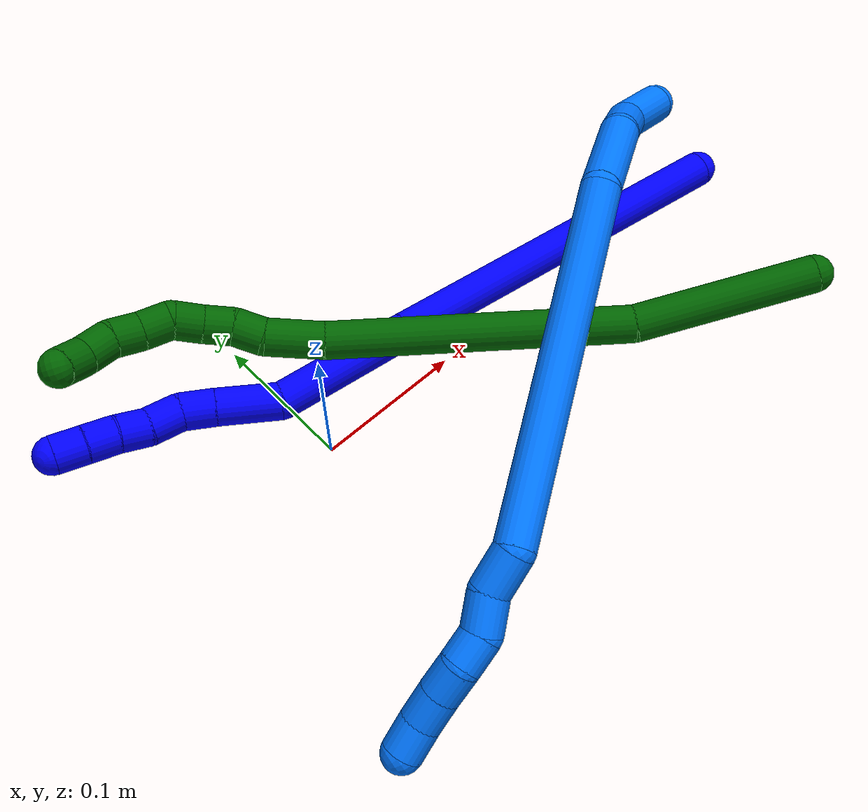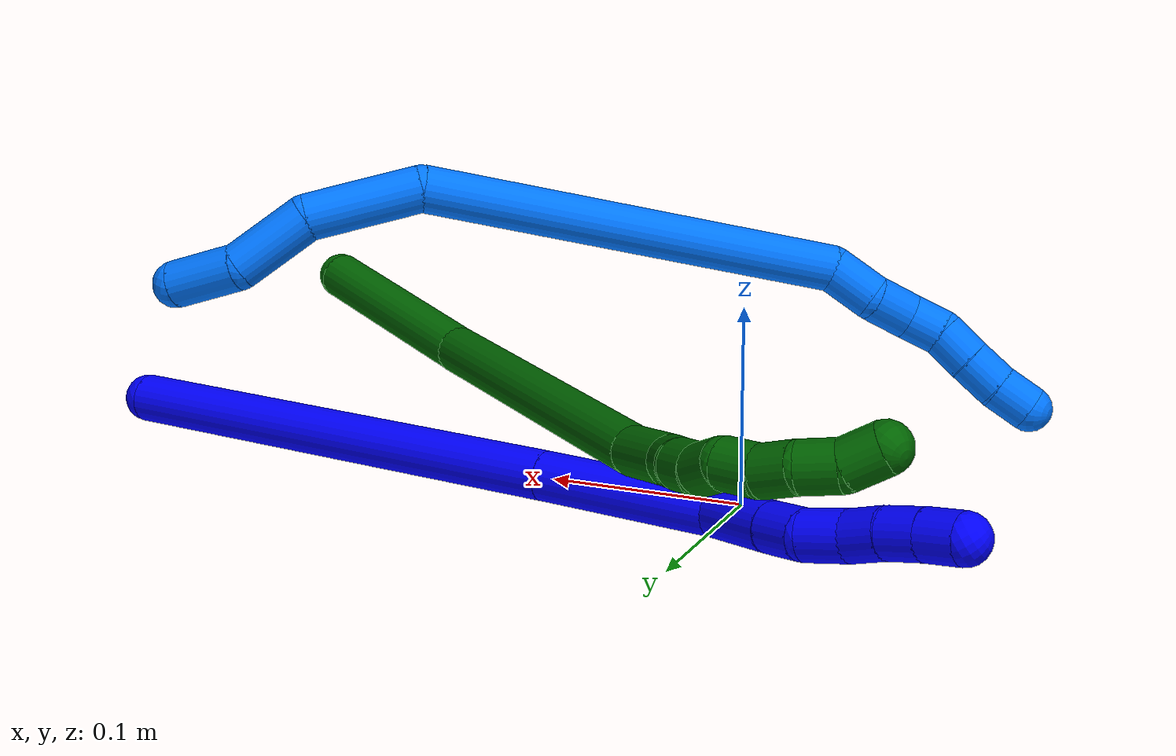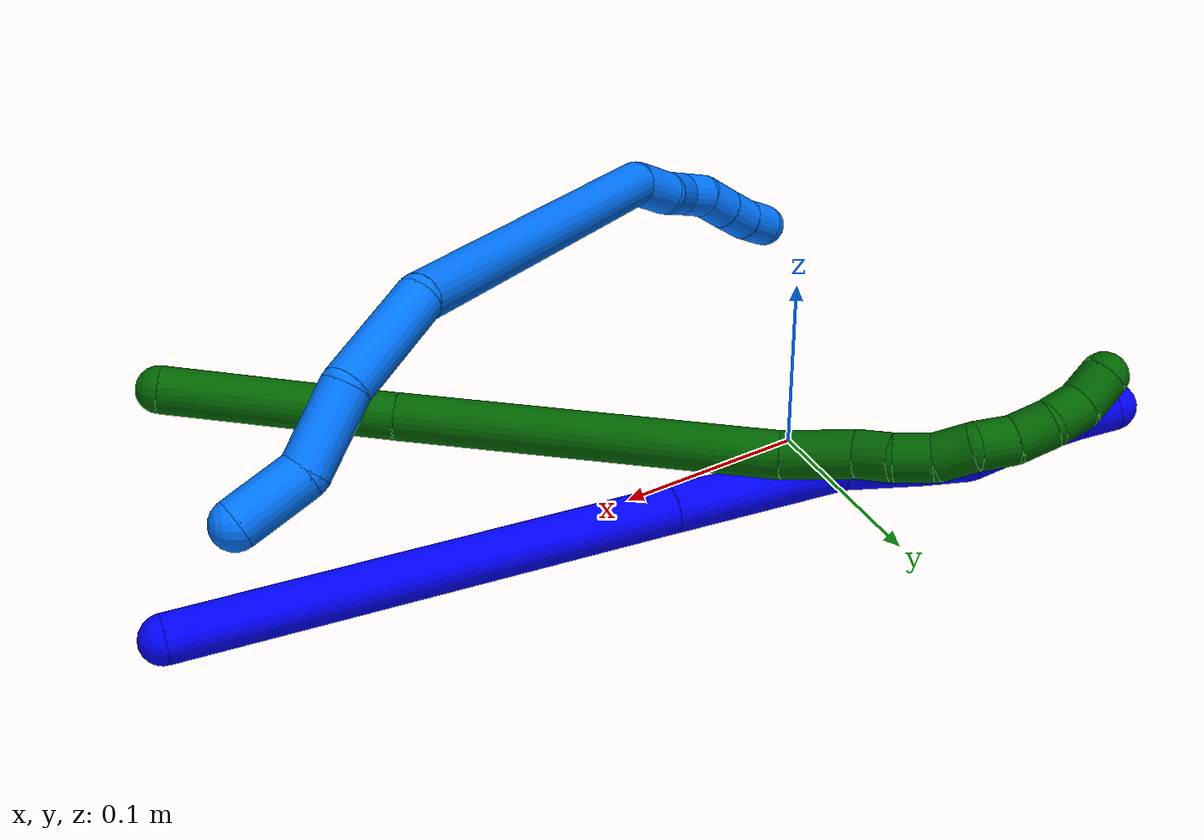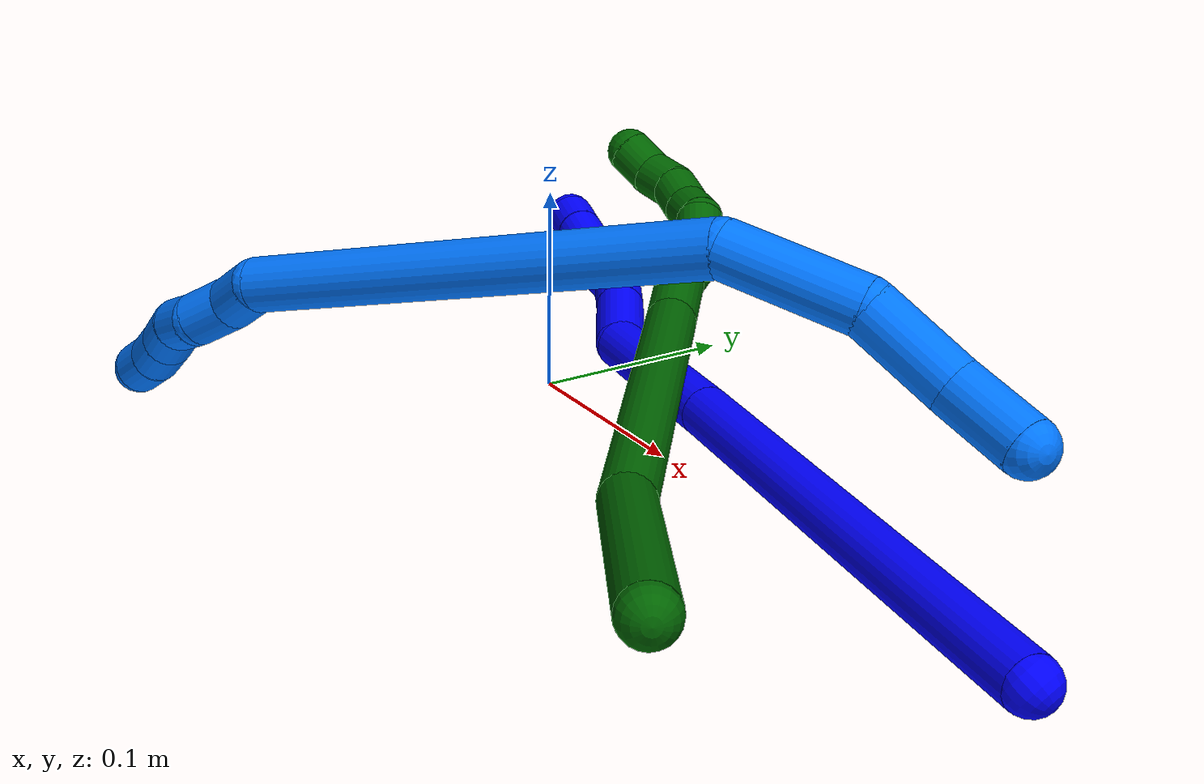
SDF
<sdf version="1.7">
 <world name="default">
  <model name="photoneo_s_sensor">
   <static>1</static>
   <pose>0 0 2 1.57079 1.57079 3.14159</pose>
   <link name="link">
    <inertial><mass>0.1</mass></inertial>
    <sensor name="sensor" type="depth">
     <update_rate>30</update_rate>
     <camera>
      <horizontal_fov>1.22</horizontal_fov>
      <image><width>1920</width><height>1200</height><format>B8G8R8</format></image>
      <clip><near>0.1</near><far>4</far></clip>
      <depth_camera><output>points</output></depth_camera>
     </camera>
     <plugin name="camera_plugin" filename="libgazebo_ros_depth_camera.so">
      <baseline>0.2</baseline>
      <alwaysOn>1</alwaysOn>
      <updateRate>0.0</updateRate>
      <cameraName>camera_ir</cameraName>
      <imageTopicName>/camera/color/image_raw</imageTopicName>
      <cameraInfoTopicName>/camera/color/camera_info</cameraInfoTopicName>
      <depthImageTopicName>/camera/depth/image_raw</depthImageTopicName>
      <depthImageCameraInfoTopicName>/camera/depth/camera_info</depthImageCameraInfoTopicName>
      <pointCloudTopicName>/camera/depth/points</pointCloudTopicName>
      <frameName>fr_optical</frameName>
      <pointCloudCutoff>0.1</pointCloudCutoff>
      <pointCloudCutoffMax>2.0</pointCloudCutoffMax>
      <distortionK1>0</distortionK1>
      <distortionK2>0</distortionK2>
      <distortionK3>0</distortionK3>
      <distortionT1>0</distortionT1>
      <distortionT2>0</distortionT2>
      <CxPrime>0</CxPrime>
      <Cx>0</Cx>
      <Cy>0</Cy>
      <focalLength>0</focalLength>
      <hackBaseline>0</hackBaseline>
     </plugin>
    </sensor>
   </link>
  </model>
  <model name="bin">
   <static>1</static>
   <link name="bottom">
    <collision name="collision-bottom">
     <pose>0 0 -0.01 0 -0 0</pose>
     <geometry><box><size>0.8 0.6 0.02</size></box></geometry>
     <surface>
      <friction><ode><mu>100</mu><mu2>100</mu2></ode></friction>
      <contact><collide_bitmask>65535</collide_bitmask></contact>
     </surface>
    </collision>
   </link>
   <link name="west_wall">
    <collision name="collision-west_wall">
     <pose>-0.41 0 0.1 0 -0 0</pose>
     <geometry><box><size>0.02 0.6 0.2</size></box></geometry>
     <surface>
      <friction><ode><mu>100</mu><mu2>100</mu2></ode></friction>
      <contact><collide_bitmask>65535</collide_bitmask></contact>
     </surface>
    </collision>
   </link>
   <link name="east_wall">
    <collision name="collision-east_wall">
     <pose>0.41 0 0.1 0 -0 0</pose>
     <geometry><box><size>0.02 0.6 0.2</size></box></geometry>
     <surface>
      <friction><ode><mu>100</mu><mu2>100</mu2></ode></friction>
      <contact><collide_bitmask>65535</collide_bitmask></contact>
     </surface>
    </collision>
   </link>
   <link name="south_wall">
    <collision name="collision-south_wall">
     <pose>0 -0.31 0.1 0 -0 0</pose>
     <geometry><box><size>0.8 0.02 0.2</size></box></geometry>
     <surface>
      <friction><ode><mu>100</mu><mu2>100</mu2></ode></friction>
      <contact><collide_bitmask>65535</collide_bitmask></contact>
     </surface>
    </collision>
   </link>
   <link name="north_wall">
    <collision name="collision-north_wall">
     <pose>0 0.31 0.1 0 -0 0</pose>
     <geometry><box><size>0.8 0.02 0.2</size></box></geometry>
     <surface>
      <friction><ode><mu>100</mu><mu2>100</mu2></ode></friction>
      <contact><collide_bitmask>65535</collide_bitmask></contact>
     </surface>
    </collision>
   </link>
  </model>
  <model name="1">
   <static>0</static>
   <link name="1">
    <collision name="collision-cylinder-e_1_1_4">
     <pose>-0.080535 0.021728 -0.097274 -2.92183 -0.679606 2.53659</pose>
     <geometry><cylinder><radius>0.0125</radius><length>0.256282</length></cylinder></geometry>
     <surface>
      <friction><ode><mu>1.16</mu><mu2>1.16</mu2><slip1>0</slip1><slip2>0</slip2></ode></friction>
      <contact><ode><kp>1e+06</kp><kd>1</kd><max_vel>0</max_vel><min_depth>0.001</min_depth></ode></contact>
     </surface>
    </collision>
    <visual name="visual-cylinder-e_1_1_4">
     <pose>-0.080535 0.021728 -0.097274 -2.92183 -0.679606 2.53659</pose>
     <geometry><cylinder><radius>0.0125</radius><length>0.256282</length></cylinder></geometry>
     <material><ambient>0 0 1 1</ambient></material>
    </visual>
    <collision name="collision-cylinder-e_2_4_5">
     <pose>-0.191255 0.052341 -0.230812 -2.90134 -0.67987 2.48377</pose>
     <geometry><cylinder><radius>0.0125</radius><length>0.096026</length></cylinder></geometry>
     <surface>
      <friction><ode><mu>1.16</mu><mu2>1.16</mu2><slip1>0</slip1><slip2>0</slip2></ode></friction>
      <contact><ode><kp>1e+06</kp><kd>1</kd><max_vel>0</max_vel><min_depth>0.001</min_depth></ode></contact>
     </surface>
    </collision>
    <visual name="visual-cylinder-e_2_4_5">
     <pose>-0.191255 0.052341 -0.230812 -2.90134 -0.67987 2.48377</pose>
     <geometry><cylinder><radius>0.0125</radius><length>0.096026</length></cylinder></geometry>
     <material><ambient>0 0 1 1</ambient></material>
    </visual>
    <collision name="collision-cylinder-e_3_5_6">
     <pose>-0.23789 0.057111 -0.279653 2.82545 -0.893374 -2.49907</pose>
     <geometry><cylinder><radius>0.0125</radius><length>0.042222</length></cylinder></geometry>
     <surface>
      <friction><ode><mu>1.16</mu><mu2>1.16</mu2><slip1>0</slip1><slip2>0</slip2></ode></friction>
      <contact><ode><kp>1e+06</kp><kd>1</kd><max_vel>0</max_vel><min_depth>0.001</min_depth></ode></contact>
     </surface>
    </collision>
    <visual name="visual-cylinder-e_3_5_6">
     <pose>-0.23789 0.057111 -0.279653 2.82545 -0.893374 -2.49907</pose>
     <geometry><cylinder><radius>0.0125</radius><length>0.042222</length></cylinder></geometry>
     <material><ambient>0 0 1 1</ambient></material>
    </visual>
    <collision name="collision-cylinder-e_4_6_7">
     <pose>-0.262875 0.051172 -0.299337 2.8902 -0.860722 -2.60437</pose>
     <geometry><cylinder><radius>0.0125</radius><length>0.022514</length></cylinder></geometry>
     <surface>
      <friction><ode><mu>1.16</mu><mu2>1.16</mu2><slip1>0</slip1><slip2>0</slip2></ode></friction>
      <contact><ode><kp>1e+06</kp><kd>1</kd><max_vel>0</max_vel><min_depth>0.001</min_depth></ode></contact>
     </surface>
    </collision>
    <visual name="visual-cylinder-e_4_6_7">
     <pose>-0.262875 0.051172 -0.299337 2.8902 -0.860722 -2.60437</pose>
     <geometry><cylinder><radius>0.0125</radius><length>0.022514</length></cylinder></geometry>
     <material><ambient>0 0 1 1</ambient></material>
    </visual>
    <collision name="collision-cylinder-e_5_7_8">
     <pose>-0.2775 0.050247 -0.316099 -3.0486 -0.560676 2.82115</pose>
     <geometry><cylinder><radius>0.0125</radius><length>0.022897</length></cylinder></geometry>
     <surface>
      <friction><ode><mu>1.16</mu><mu2>1.16</mu2><slip1>0</slip1><slip2>0</slip2></ode></friction>
      <contact><ode><kp>1e+06</kp><kd>1</kd><max_vel>0</max_vel><min_depth>0.001</min_depth></ode></contact>
     </surface>
    </collision>
    <visual name="visual-cylinder-e_5_7_8">
     <pose>-0.2775 0.050247 -0.316099 -3.0486 -0.560676 2.82115</pose>
     <geometry><cylinder><radius>0.0125</radius><length>0.022897</length></cylinder></geometry>
     <material><ambient>0 0 1 1</ambient></material>
    </visual>
    <collision name="collision-cylinder-e_6_8_9">
     <pose>-0.289081 0.049796 -0.334015 2.97955 -0.580663 -2.61086</pose>
     <geometry><cylinder><radius>0.0125</radius><length>0.020028</length></cylinder></geometry>
     <surface>
      <friction><ode><mu>1.16</mu><mu2>1.16</mu2><slip1>0</slip1><slip2>0</slip2></ode></friction>
      <contact><ode><kp>1e+06</kp><kd>1</kd><max_vel>0</max_vel><min_depth>0.001</min_depth></ode></contact>
     </surface>
    </collision>
    <visual name="visual-cylinder-e_6_8_9">
     <pose>-0.289081 0.049796 -0.334015 2.97955 -0.580663 -2.61086</pose>
     <geometry><cylinder><radius>0.0125</radius><length>0.020028</length></cylinder></geometry>
     <material><ambient>0 0 1 1</ambient></material>
    </visual>
    <collision name="collision-cylinder-e_7_9_10">
     <pose>-0.300559 0.048176 -0.350303 3.108 -0.640523 -3.04038</pose>
     <geometry><cylinder><radius>0.0125</radius><length>0.02003</length></cylinder></geometry>
     <surface>
      <friction><ode><mu>1.16</mu><mu2>1.16</mu2><slip1>0</slip1><slip2>0</slip2></ode></friction>
      <contact><ode><kp>1e+06</kp><kd>1</kd><max_vel>0</max_vel><min_depth>0.001</min_depth></ode></contact>
     </surface>
    </collision>
    <visual name="visual-cylinder-e_7_9_10">
     <pose>-0.300559 0.048176 -0.350303 3.108 -0.640523 -3.04038</pose>
     <geometry><cylinder><radius>0.0125</radius><length>0.02003</length></cylinder></geometry>
     <material><ambient>0 0 1 1</ambient></material>
    </visual>
    <collision name="collision-cylinder-e_8_10_2">
     <pose>-0.312968 0.047802 -0.365993 3.12805 -0.69756 -3.10436</pose>
     <geometry><cylinder><radius>0.0125</radius><length>0.020002</length></cylinder></geometry>
     <surface>
      <friction><ode><mu>1.16</mu><mu2>1.16</mu2><slip1>0</slip1><slip2>0</slip2></ode></friction>
      <contact><ode><kp>1e+06</kp><kd>1</kd><max_vel>0</max_vel><min_depth>0.001</min_depth></ode></contact>
     </surface>
    </collision>
    <visual name="visual-cylinder-e_8_10_2">
     <pose>-0.312968 0.047802 -0.365993 3.12805 -0.69756 -3.10436</pose>
     <geometry><cylinder><radius>0.0125</radius><length>0.020002</length></cylinder></geometry>
     <material><ambient>0 0 1 1</ambient></material>
    </visual>
    <collision name="collision-sphere-2">
     <pose>-0.319393 0.047699 -0.373657 0 -0 0</pose>
     <geometry><sphere><radius>0.0125</radius></sphere></geometry>
     <surface>
      <friction><ode><mu>1.16</mu><mu2>1.16</mu2><slip1>0</slip1><slip2>0</slip2></ode></friction>
      <contact><ode><kp>1e+06</kp><kd>1</kd><max_vel>0</max_vel><min_depth>0.001</min_depth></ode></contact>
     </surface>
    </collision>
    <visual name="visual-sphere-2">
     <pose>-0.319393 0.047699 -0.373657 0 -0 0</pose>
     <geometry><sphere><radius>0.0125</radius></sphere></geometry>
     <material><ambient>0 0 1 1</ambient></material>
    </visual>
    <collision name="collision-sphere-10">
     <pose>-0.306544 0.047906 -0.358329 0 -0 0</pose>
     <geometry><sphere><radius>0.0125</radius></sphere></geometry>
     <surface>
      <friction><ode><mu>1.16</mu><mu2>1.16</mu2><slip1>0</slip1><slip2>0</slip2></ode></friction>
      <contact><ode><kp>1e+06</kp><kd>1</kd><max_vel>0</max_vel><min_depth>0.001</min_depth></ode></contact>
     </surface>
    </collision>
    <visual name="visual-sphere-10">
     <pose>-0.306544 0.047906 -0.358329 0 -0 0</pose>
     <geometry><sphere><radius>0.0125</radius></sphere></geometry>
     <material><ambient>0 0 1 1</ambient></material>
    </visual>
    <collision name="collision-sphere-9">
     <pose>-0.294574 0.048446 -0.342278 0 -0 0</pose>
     <geometry><sphere><radius>0.0125</radius></sphere></geometry>
     <surface>
      <friction><ode><mu>1.16</mu><mu2>1.16</mu2><slip1>0</slip1><slip2>0</slip2></ode></friction>
      <contact><ode><kp>1e+06</kp><kd>1</kd><max_vel>0</max_vel><min_depth>0.001</min_depth></ode></contact>
     </surface>
    </collision>
    <visual name="visual-sphere-9">
     <pose>-0.294574 0.048446 -0.342278 0 -0 0</pose>
     <geometry><sphere><radius>0.0125</radius></sphere></geometry>
     <material><ambient>0 0 1 1</ambient></material>
    </visual>
    <collision name="collision-sphere-4">
     <pose>-0.16107 0.043456 -0.194547 0 -0 0</pose>
     <geometry><sphere><radius>0.0125</radius></sphere></geometry>
     <surface>
      <friction><ode><mu>1.16</mu><mu2>1.16</mu2><slip1>0</slip1><slip2>0</slip2></ode></friction>
      <contact><ode><kp>1e+06</kp><kd>1</kd><max_vel>0</max_vel><min_depth>0.001</min_depth></ode></contact>
     </surface>
    </collision>
    <visual name="visual-sphere-4">
     <pose>-0.16107 0.043456 -0.194547 0 -0 0</pose>
     <geometry><sphere><radius>0.0125</radius></sphere></geometry>
     <material><ambient>0 0 1 1</ambient></material>
    </visual>
    <collision name="collision-sphere-1">
     <geometry><sphere><radius>0.0125</radius></sphere></geometry>
     <surface>
      <friction><ode><mu>1.16</mu><mu2>1.16</mu2><slip1>0</slip1><slip2>0</slip2></ode></friction>
      <contact><ode><kp>1e+06</kp><kd>1</kd><max_vel>0</max_vel><min_depth>0.001</min_depth></ode></contact>
     </surface>
    </collision>
    <visual name="visual-sphere-1">
     <geometry><sphere><radius>0.0125</radius></sphere></geometry>
     <material><ambient>0 0 1 1</ambient></material>
    </visual>
    <collision name="collision-sphere-8">
     <pose>-0.283587 0.051147 -0.325752 0 -0 0</pose>
     <geometry><sphere><radius>0.0125</radius></sphere></geometry>
     <surface>
      <friction><ode><mu>1.16</mu><mu2>1.16</mu2><slip1>0</slip1><slip2>0</slip2></ode></friction>
      <contact><ode><kp>1e+06</kp><kd>1</kd><max_vel>0</max_vel><min_depth>0.001</min_depth></ode></contact>
     </surface>
    </collision>
    <visual name="visual-sphere-8">
     <pose>-0.283587 0.051147 -0.325752 0 -0 0</pose>
     <geometry><sphere><radius>0.0125</radius></sphere></geometry>
     <material><ambient>0 0 1 1</ambient></material>
    </visual>
    <collision name="collision-sphere-5">
     <pose>-0.22144 0.061225 -0.267077 0 -0 0</pose>
     <geometry><sphere><radius>0.0125</radius></sphere></geometry>
     <surface>
      <friction><ode><mu>1.16</mu><mu2>1.16</mu2><slip1>0</slip1><slip2>0</slip2></ode></friction>
      <contact><ode><kp>1e+06</kp><kd>1</kd><max_vel>0</max_vel><min_depth>0.001</min_depth></ode></contact>
     </surface>
    </collision>
    <visual name="visual-sphere-5">
     <pose>-0.22144 0.061225 -0.267077 0 -0 0</pose>
     <geometry><sphere><radius>0.0125</radius></sphere></geometry>
     <material><ambient>0 0 1 1</ambient></material>
    </visual>
    <collision name="collision-sphere-6">
     <pose>-0.254339 0.052997 -0.29223 0 -0 0</pose>
     <geometry><sphere><radius>0.0125</radius></sphere></geometry>
     <surface>
      <friction><ode><mu>1.16</mu><mu2>1.16</mu2><slip1>0</slip1><slip2>0</slip2></ode></friction>
      <contact><ode><kp>1e+06</kp><kd>1</kd><max_vel>0</max_vel><min_depth>0.001</min_depth></ode></contact>
     </surface>
    </collision>
    <visual name="visual-sphere-6">
     <pose>-0.254339 0.052997 -0.29223 0 -0 0</pose>
     <geometry><sphere><radius>0.0125</radius></sphere></geometry>
     <material><ambient>0 0 1 1</ambient></material>
    </visual>
    <collision name="collision-sphere-7">
     <pose>-0.271412 0.049347 -0.306445 0 -0 0</pose>
     <geometry><sphere><radius>0.0125</radius></sphere></geometry>
     <surface>
      <friction><ode><mu>1.16</mu><mu2>1.16</mu2><slip1>0</slip1><slip2>0</slip2></ode></friction>
      <contact><ode><kp>1e+06</kp><kd>1</kd><max_vel>0</max_vel><min_depth>0.001</min_depth></ode></contact>
     </surface>
    </collision>
    <visual name="visual-sphere-7">
     <pose>-0.271412 0.049347 -0.306445 0 -0 0</pose>
     <geometry><sphere><radius>0.0125</radius></sphere></geometry>
     <material><ambient>0 0 1 1</ambient></material>
    </visual>
    <inertial>
     <pose>-0.158782 0.036454 -0.187809 0 -0 0</pose>
     <mass>0.5</mass>
     <inertia>
      <ixx>-0.000328</ixx>
      <ixy>0</ixy>
      <ixz>0</ixz>
      <iyy>0.001987</iyy>
      <iyz>0</iyz>
      <izz>0.000667</izz>
     </inertia>
    </inertial>
   </link>
   <pose>0.344636 -0.009348 0.011492 -2.21176 -0.463312 -0.944536</pose>
  </model>
  <model name="6">
   <static>0</static>
   <link name="6">
    <collision name="collision-cylinder-e_1_1_4">
     <pose>-0.001709 0.001632 -0.060561 -3.11466 -0.028195 1.61649</pose>
     <geometry><cylinder><radius>0.0125</radius><length>0.121214</length></cylinder></geometry>
     <surface>
      <friction><ode><mu>1.16</mu><mu2>1.16</mu2><slip1>0</slip1><slip2>0</slip2></ode></friction>
      <contact><ode><kp>1e+06</kp><kd>1</kd><max_vel>0</max_vel><min_depth>0.001</min_depth></ode></contact>
     </surface>
    </collision>
    <visual name="visual-cylinder-e_1_1_4">
     <pose>-0.001709 0.001632 -0.060561 -3.11466 -0.028195 1.61649</pose>
     <geometry><cylinder><radius>0.0125</radius><length>0.121214</length></cylinder></geometry>
     <material><ambient>0 0.392157 0.003922 1</ambient></material>
    </visual>
    <collision name="collision-cylinder-e_2_4_5">
     <pose>-0.024999 0.016697 -0.217921 -3.0037 -0.217355 2.01303</pose>
     <geometry><cylinder><radius>0.0125</radius><length>0.200162</length></cylinder></geometry>
     <surface>
      <friction><ode><mu>1.16</mu><mu2>1.16</mu2><slip1>0</slip1><slip2>0</slip2></ode></friction>
      <contact><ode><kp>1e+06</kp><kd>1</kd><max_vel>0</max_vel><min_depth>0.001</min_depth></ode></contact>
     </surface>
    </collision>
    <visual name="visual-cylinder-e_2_4_5">
     <pose>-0.024999 0.016697 -0.217921 -3.0037 -0.217355 2.01303</pose>
     <geometry><cylinder><radius>0.0125</radius><length>0.200162</length></cylinder></geometry>
     <material><ambient>0 0.392157 0.003922 1</ambient></material>
    </visual>
    <collision name="collision-cylinder-e_3_5_6">
     <pose>-0.053785 0.032091 -0.332514 -3.03183 -0.382565 2.58873</pose>
     <geometry><cylinder><radius>0.0125</radius><length>0.038594</length></cylinder></geometry>
     <surface>
      <friction><ode><mu>1.16</mu><mu2>1.16</mu2><slip1>0</slip1><slip2>0</slip2></ode></friction>
      <contact><ode><kp>1e+06</kp><kd>1</kd><max_vel>0</max_vel><min_depth>0.001</min_depth></ode></contact>
     </surface>
    </collision>
    <visual name="visual-cylinder-e_3_5_6">
     <pose>-0.053785 0.032091 -0.332514 -3.03183 -0.382565 2.58873</pose>
     <geometry><cylinder><radius>0.0125</radius><length>0.038594</length></cylinder></geometry>
     <material><ambient>0 0.392157 0.003922 1</ambient></material>
    </visual>
    <collision name="collision-cylinder-e_4_6_7">
     <pose>-0.066 0.037294 -0.35834 -2.75795 -0.524488 1.88893</pose>
     <geometry><cylinder><radius>0.0125</radius><length>0.020014</length></cylinder></geometry>
     <surface>
      <friction><ode><mu>1.16</mu><mu2>1.16</mu2><slip1>0</slip1><slip2>0</slip2></ode></friction>
      <contact><ode><kp>1e+06</kp><kd>1</kd><max_vel>0</max_vel><min_depth>0.001</min_depth></ode></contact>
     </surface>
    </collision>
    <visual name="visual-cylinder-e_4_6_7">
     <pose>-0.066 0.037294 -0.35834 -2.75795 -0.524488 1.88893</pose>
     <geometry><cylinder><radius>0.0125</radius><length>0.020014</length></cylinder></geometry>
     <material><ambient>0 0.392157 0.003922 1</ambient></material>
    </visual>
    <collision name="collision-cylinder-e_5_7_8">
     <pose>-0.074821 0.041761 -0.375538 -3.00873 -0.390864 2.49315</pose>
     <geometry><cylinder><radius>0.0125</radius><length>0.020003</length></cylinder></geometry>
     <surface>
      <friction><ode><mu>1.16</mu><mu2>1.16</mu2><slip1>0</slip1><slip2>0</slip2></ode></friction>
      <contact><ode><kp>1e+06</kp><kd>1</kd><max_vel>0</max_vel><min_depth>0.001</min_depth></ode></contact>
     </surface>
    </collision>
    <visual name="visual-cylinder-e_5_7_8">
     <pose>-0.074821 0.041761 -0.375538 -3.00873 -0.390864 2.49315</pose>
     <geometry><cylinder><radius>0.0125</radius><length>0.020003</length></cylinder></geometry>
     <material><ambient>0 0.392157 0.003922 1</ambient></material>
    </visual>
    <collision name="collision-cylinder-e_6_8_9">
     <pose>-0.084213 0.042226 -0.392967 3.04985 -0.592044 -2.8428</pose>
     <geometry><cylinder><radius>0.0125</radius><length>0.020002</length></cylinder></geometry>
     <surface>
      <friction><ode><mu>1.16</mu><mu2>1.16</mu2><slip1>0</slip1><slip2>0</slip2></ode></friction>
      <contact><ode><kp>1e+06</kp><kd>1</kd><max_vel>0</max_vel><min_depth>0.001</min_depth></ode></contact>
     </surface>
    </collision>
    <visual name="visual-cylinder-e_6_8_9">
     <pose>-0.084213 0.042226 -0.392967 3.04985 -0.592044 -2.8428</pose>
     <geometry><cylinder><radius>0.0125</radius><length>0.020002</length></cylinder></geometry>
     <material><ambient>0 0.392157 0.003922 1</ambient></material>
    </visual>
    <collision name="collision-cylinder-e_7_9_10">
     <pose>-0.090819 0.039001 -0.41087 2.89127 -0.102681 -0.775477</pose>
     <geometry><cylinder><radius>0.0125</radius><length>0.020004</length></cylinder></geometry>
     <surface>
      <friction><ode><mu>1.16</mu><mu2>1.16</mu2><slip1>0</slip1><slip2>0</slip2></ode></friction>
      <contact><ode><kp>1e+06</kp><kd>1</kd><max_vel>0</max_vel><min_depth>0.001</min_depth></ode></contact>
     </surface>
    </collision>
    <visual name="visual-cylinder-e_7_9_10">
     <pose>-0.090819 0.039001 -0.41087 2.89127 -0.102681 -0.775477</pose>
     <geometry><cylinder><radius>0.0125</radius><length>0.020004</length></cylinder></geometry>
     <material><ambient>0 0.392157 0.003922 1</ambient></material>
    </visual>
    <collision name="collision-cylinder-e_8_10_11">
     <pose>-0.095018 0.032676 -0.429176 2.72254 -0.322811 -1.30693</pose>
     <geometry><cylinder><radius>0.0125</radius><length>0.020007</length></cylinder></geometry>
     <surface>
      <friction><ode><mu>1.16</mu><mu2>1.16</mu2><slip1>0</slip1><slip2>0</slip2></ode></friction>
      <contact><ode><kp>1e+06</kp><kd>1</kd><max_vel>0</max_vel><min_depth>0.001</min_depth></ode></contact>
     </surface>
    </collision>
    <visual name="visual-cylinder-e_8_10_11">
     <pose>-0.095018 0.032676 -0.429176 2.72254 -0.322811 -1.30693</pose>
     <geometry><cylinder><radius>0.0125</radius><length>0.020007</length></cylinder></geometry>
     <material><ambient>0 0.392157 0.003922 1</ambient></material>
    </visual>
    <collision name="collision-cylinder-e_9_11_12">
     <pose>-0.099053 0.02294 -0.445887 2.51083 -0.086295 -0.263122</pose>
     <geometry><cylinder><radius>0.0125</radius><length>0.02</length></cylinder></geometry>
     <surface>
      <friction><ode><mu>1.16</mu><mu2>1.16</mu2><slip1>0</slip1><slip2>0</slip2></ode></friction>
      <contact><ode><kp>1e+06</kp><kd>1</kd><max_vel>0</max_vel><min_depth>0.001</min_depth></ode></contact>
     </surface>
    </collision>
    <visual name="visual-cylinder-e_9_11_12">
     <pose>-0.099053 0.02294 -0.445887 2.51083 -0.086295 -0.263122</pose>
     <geometry><cylinder><radius>0.0125</radius><length>0.02</length></cylinder></geometry>
     <material><ambient>0 0.392157 0.003922 1</ambient></material>
    </visual>
    <collision name="collision-cylinder-e_10_12_2">
     <pose>-0.103365 0.009824 -0.459906 2.26059 -0.352186 -0.721867</pose>
     <geometry><cylinder><radius>0.0125</radius><length>0.02</length></cylinder></geometry>
     <surface>
      <friction><ode><mu>1.16</mu><mu2>1.16</mu2><slip1>0</slip1><slip2>0</slip2></ode></friction>
      <contact><ode><kp>1e+06</kp><kd>1</kd><max_vel>0</max_vel><min_depth>0.001</min_depth></ode></contact>
     </surface>
    </collision>
    <visual name="visual-cylinder-e_10_12_2">
     <pose>-0.103365 0.009824 -0.459906 2.26059 -0.352186 -0.721867</pose>
     <geometry><cylinder><radius>0.0125</radius><length>0.02</length></cylinder></geometry>
     <material><ambient>0 0.392157 0.003922 1</ambient></material>
    </visual>
    <collision name="collision-sphere-2">
     <pose>-0.106814 0.002584 -0.465879 0 -0 0</pose>
     <geometry><sphere><radius>0.0125</radius></sphere></geometry>
     <surface>
      <friction><ode><mu>1.16</mu><mu2>1.16</mu2><slip1>0</slip1><slip2>0</slip2></ode></friction>
      <contact><ode><kp>1e+06</kp><kd>1</kd><max_vel>0</max_vel><min_depth>0.001</min_depth></ode></contact>
     </surface>
    </collision>
    <visual name="visual-sphere-2">
     <pose>-0.106814 0.002584 -0.465879 0 -0 0</pose>
     <geometry><sphere><radius>0.0125</radius></sphere></geometry>
     <material><ambient>0 0.392157 0.003922 1</ambient></material>
    </visual>
    <collision name="collision-sphere-12">
     <pose>-0.099915 0.017065 -0.453933 0 -0 0</pose>
     <geometry><sphere><radius>0.0125</radius></sphere></geometry>
     <surface>
      <friction><ode><mu>1.16</mu><mu2>1.16</mu2><slip1>0</slip1><slip2>0</slip2></ode></friction>
      <contact><ode><kp>1e+06</kp><kd>1</kd><max_vel>0</max_vel><min_depth>0.001</min_depth></ode></contact>
     </surface>
    </collision>
    <visual name="visual-sphere-12">
     <pose>-0.099915 0.017065 -0.453933 0 -0 0</pose>
     <geometry><sphere><radius>0.0125</radius></sphere></geometry>
     <material><ambient>0 0.392157 0.003922 1</ambient></material>
    </visual>
    <collision name="collision-sphere-11">
     <pose>-0.098191 0.028816 -0.437841 0 -0 0</pose>
     <geometry><sphere><radius>0.0125</radius></sphere></geometry>
     <surface>
      <friction><ode><mu>1.16</mu><mu2>1.16</mu2><slip1>0</slip1><slip2>0</slip2></ode></friction>
      <contact><ode><kp>1e+06</kp><kd>1</kd><max_vel>0</max_vel><min_depth>0.001</min_depth></ode></contact>
     </surface>
    </collision>
    <visual name="visual-sphere-11">
     <pose>-0.098191 0.028816 -0.437841 0 -0 0</pose>
     <geometry><sphere><radius>0.0125</radius></sphere></geometry>
     <material><ambient>0 0.392157 0.003922 1</ambient></material>
    </visual>
    <collision name="collision-sphere-10">
     <pose>-0.091844 0.036536 -0.42051 0 -0 0</pose>
     <geometry><sphere><radius>0.0125</radius></sphere></geometry>
     <surface>
      <friction><ode><mu>1.16</mu><mu2>1.16</mu2><slip1>0</slip1><slip2>0</slip2></ode></friction>
      <contact><ode><kp>1e+06</kp><kd>1</kd><max_vel>0</max_vel><min_depth>0.001</min_depth></ode></contact>
     </surface>
    </collision>
    <visual name="visual-sphere-10">
     <pose>-0.091844 0.036536 -0.42051 0 -0 0</pose>
     <geometry><sphere><radius>0.0125</radius></sphere></geometry>
     <material><ambient>0 0.392157 0.003922 1</ambient></material>
    </visual>
    <collision name="collision-sphere-9">
     <pose>-0.089794 0.041466 -0.401231 0 -0 0</pose>
     <geometry><sphere><radius>0.0125</radius></sphere></geometry>
     <surface>
      <friction><ode><mu>1.16</mu><mu2>1.16</mu2><slip1>0</slip1><slip2>0</slip2></ode></friction>
      <contact><ode><kp>1e+06</kp><kd>1</kd><max_vel>0</max_vel><min_depth>0.001</min_depth></ode></contact>
     </surface>
    </collision>
    <visual name="visual-sphere-9">
     <pose>-0.089794 0.041466 -0.401231 0 -0 0</pose>
     <geometry><sphere><radius>0.0125</radius></sphere></geometry>
     <material><ambient>0 0.392157 0.003922 1</ambient></material>
    </visual>
    <collision name="collision-sphere-4">
     <pose>-0.003417 0.003263 -0.121122 0 -0 0</pose>
     <geometry><sphere><radius>0.0125</radius></sphere></geometry>
     <surface>
      <friction><ode><mu>1.16</mu><mu2>1.16</mu2><slip1>0</slip1><slip2>0</slip2></ode></friction>
      <contact><ode><kp>1e+06</kp><kd>1</kd><max_vel>0</max_vel><min_depth>0.001</min_depth></ode></contact>
     </surface>
    </collision>
    <visual name="visual-sphere-4">
     <pose>-0.003417 0.003263 -0.121122 0 -0 0</pose>
     <geometry><sphere><radius>0.0125</radius></sphere></geometry>
     <material><ambient>0 0.392157 0.003922 1</ambient></material>
    </visual>
    <collision name="collision-sphere-1">
     <geometry><sphere><radius>0.0125</radius></sphere></geometry>
     <surface>
      <friction><ode><mu>1.16</mu><mu2>1.16</mu2><slip1>0</slip1><slip2>0</slip2></ode></friction>
      <contact><ode><kp>1e+06</kp><kd>1</kd><max_vel>0</max_vel><min_depth>0.001</min_depth></ode></contact>
     </surface>
    </collision>
    <visual name="visual-sphere-1">
     <geometry><sphere><radius>0.0125</radius></sphere></geometry>
     <material><ambient>0 0.392157 0.003922 1</ambient></material>
    </visual>
    <collision name="collision-sphere-8">
     <pose>-0.078632 0.042986 -0.384704 0 -0 0</pose>
     <geometry><sphere><radius>0.0125</radius></sphere></geometry>
     <surface>
      <friction><ode><mu>1.16</mu><mu2>1.16</mu2><slip1>0</slip1><slip2>0</slip2></ode></friction>
      <contact><ode><kp>1e+06</kp><kd>1</kd><max_vel>0</max_vel><min_depth>0.001</min_depth></ode></contact>
     </surface>
    </collision>
    <visual name="visual-sphere-8">
     <pose>-0.078632 0.042986 -0.384704 0 -0 0</pose>
     <geometry><sphere><radius>0.0125</radius></sphere></geometry>
     <material><ambient>0 0.392157 0.003922 1</ambient></material>
    </visual>
    <collision name="collision-sphere-5">
     <pose>-0.046582 0.03013 -0.31472 0 -0 0</pose>
     <geometry><sphere><radius>0.0125</radius></sphere></geometry>
     <surface>
      <friction><ode><mu>1.16</mu><mu2>1.16</mu2><slip1>0</slip1><slip2>0</slip2></ode></friction>
      <contact><ode><kp>1e+06</kp><kd>1</kd><max_vel>0</max_vel><min_depth>0.001</min_depth></ode></contact>
     </surface>
    </collision>
    <visual name="visual-sphere-5">
     <pose>-0.046582 0.03013 -0.31472 0 -0 0</pose>
     <geometry><sphere><radius>0.0125</radius></sphere></geometry>
     <material><ambient>0 0.392157 0.003922 1</ambient></material>
    </visual>
    <collision name="collision-sphere-6">
     <pose>-0.060989 0.034052 -0.350308 0 -0 0</pose>
     <geometry><sphere><radius>0.0125</radius></sphere></geometry>
     <surface>
      <friction><ode><mu>1.16</mu><mu2>1.16</mu2><slip1>0</slip1><slip2>0</slip2></ode></friction>
      <contact><ode><kp>1e+06</kp><kd>1</kd><max_vel>0</max_vel><min_depth>0.001</min_depth></ode></contact>
     </surface>
    </collision>
    <visual name="visual-sphere-6">
     <pose>-0.060989 0.034052 -0.350308 0 -0 0</pose>
     <geometry><sphere><radius>0.0125</radius></sphere></geometry>
     <material><ambient>0 0.392157 0.003922 1</ambient></material>
    </visual>
    <collision name="collision-sphere-7">
     <pose>-0.071011 0.040536 -0.366372 0 -0 0</pose>
     <geometry><sphere><radius>0.0125</radius></sphere></geometry>
     <surface>
      <friction><ode><mu>1.16</mu><mu2>1.16</mu2><slip1>0</slip1><slip2>0</slip2></ode></friction>
      <contact><ode><kp>1e+06</kp><kd>1</kd><max_vel>0</max_vel><min_depth>0.001</min_depth></ode></contact>
     </surface>
    </collision>
    <visual name="visual-sphere-7">
     <pose>-0.071011 0.040536 -0.366372 0 -0 0</pose>
     <geometry><sphere><radius>0.0125</radius></sphere></geometry>
     <material><ambient>0 0.392157 0.003922 1</ambient></material>
    </visual>
    <inertial>
     <pose>-0.03911 0.018588 -0.242517 0 -0 0</pose>
     <mass>0.5</mass>
     <inertia>
      <ixx>0.000449</ixx>
      <ixy>0</ixy>
      <ixz>0</ixz>
      <iyy>0.001069</iyy>
      <iyz>0</iyz>
      <izz>2.6e-05</izz>
     </inertia>
    </inertial>
   </link>
   <pose>0.296113 -0.140709 0.054569 -1.1151 1.19426 -1.63205</pose>
  </model>
  <model name="14">
   <static>0</static>
   <link name="14">
    <collision name="collision-cylinder-e_1_1_4">
     <pose>-0.006771 -0.007235 0.016026 0.424041 -0.367572 -0.079982</pose>
     <geometry><cylinder><radius>0.0125</radius><length>0.037684</length></cylinder></geometry>
     <surface>
      <friction><ode><mu>1.16</mu><mu2>1.16</mu2><slip1>0</slip1><slip2>0</slip2></ode></friction>
      <contact><ode><kp>1e+06</kp><kd>1</kd><max_vel>0</max_vel><min_depth>0.001</min_depth></ode></contact>
     </surface>
    </collision>
    <visual name="visual-cylinder-e_1_1_4">
     <pose>-0.006771 -0.007235 0.016026 0.424041 -0.367572 -0.079982</pose>
     <geometry><cylinder><radius>0.0125</radius><length>0.037684</length></cylinder></geometry>
     <material><ambient>0 0.462745 1 1</ambient></material>
    </visual>
    <collision name="collision-cylinder-e_2_4_5">
     <pose>-0.028089 -0.025883 0.043414 0.787661 -0.734631 -0.317097</pose>
     <geometry><cylinder><radius>0.0125</radius><length>0.043404</length></cylinder></geometry>
     <surface>
      <friction><ode><mu>1.16</mu><mu2>1.16</mu2><slip1>0</slip1><slip2>0</slip2></ode></friction>
      <contact><ode><kp>1e+06</kp><kd>1</kd><max_vel>0</max_vel><min_depth>0.001</min_depth></ode></contact>
     </surface>
    </collision>
    <visual name="visual-cylinder-e_2_4_5">
     <pose>-0.028089 -0.025883 0.043414 0.787661 -0.734631 -0.317097</pose>
     <geometry><cylinder><radius>0.0125</radius><length>0.043404</length></cylinder></geometry>
     <material><ambient>0 0.462745 1 1</ambient></material>
    </visual>
    <collision name="collision-cylinder-e_3_5_6">
     <pose>-0.063732 -0.043036 0.076425 0.259166 -0.755498 -0.103326</pose>
     <geometry><cylinder><radius>0.0125</radius><length>0.061536</length></cylinder></geometry>
     <surface>
      <friction><ode><mu>1.16</mu><mu2>1.16</mu2><slip1>0</slip1><slip2>0</slip2></ode></friction>
      <contact><ode><kp>1e+06</kp><kd>1</kd><max_vel>0</max_vel><min_depth>0.001</min_depth></ode></contact>
     </surface>
    </collision>
    <visual name="visual-cylinder-e_3_5_6">
     <pose>-0.063732 -0.043036 0.076425 0.259166 -0.755498 -0.103326</pose>
     <geometry><cylinder><radius>0.0125</radius><length>0.061536</length></cylinder></geometry>
     <material><ambient>0 0.462745 1 1</ambient></material>
    </visual>
    <collision name="collision-cylinder-e_4_6_7">
     <pose>-0.152572 -0.020205 0.183612 -0.322358 -0.644254 0.108423</pose>
     <geometry><cylinder><radius>0.0125</radius><length>0.225584</length></cylinder></geometry>
     <surface>
      <friction><ode><mu>1.16</mu><mu2>1.16</mu2><slip1>0</slip1><slip2>0</slip2></ode></friction>
      <contact><ode><kp>1e+06</kp><kd>1</kd><max_vel>0</max_vel><min_depth>0.001</min_depth></ode></contact>
     </surface>
    </collision>
    <visual name="visual-cylinder-e_4_6_7">
     <pose>-0.152572 -0.020205 0.183612 -0.322358 -0.644254 0.108423</pose>
     <geometry><cylinder><radius>0.0125</radius><length>0.225584</length></cylinder></geometry>
     <material><ambient>0 0.462745 1 1</ambient></material>
    </visual>
    <collision name="collision-cylinder-e_5_7_8">
     <pose>-0.222373 0.014556 0.280722 -0.491237 -0.155569 0.039072</pose>
     <geometry><cylinder><radius>0.0125</radius><length>0.02657</length></cylinder></geometry>
     <surface>
      <friction><ode><mu>1.16</mu><mu2>1.16</mu2><slip1>0</slip1><slip2>0</slip2></ode></friction>
      <contact><ode><kp>1e+06</kp><kd>1</kd><max_vel>0</max_vel><min_depth>0.001</min_depth></ode></contact>
     </surface>
    </collision>
    <visual name="visual-cylinder-e_5_7_8">
     <pose>-0.222373 0.014556 0.280722 -0.491237 -0.155569 0.039072</pose>
     <geometry><cylinder><radius>0.0125</radius><length>0.02657</length></cylinder></geometry>
     <material><ambient>0 0.462745 1 1</ambient></material>
    </visual>
    <collision name="collision-cylinder-e_6_8_9">
     <pose>-0.230331 0.026796 0.30051 -0.634626 -0.524264 0.175775</pose>
     <geometry><cylinder><radius>0.0125</radius><length>0.023569</length></cylinder></geometry>
     <surface>
      <friction><ode><mu>1.16</mu><mu2>1.16</mu2><slip1>0</slip1><slip2>0</slip2></ode></friction>
      <contact><ode><kp>1e+06</kp><kd>1</kd><max_vel>0</max_vel><min_depth>0.001</min_depth></ode></contact>
     </surface>
    </collision>
    <visual name="visual-cylinder-e_6_8_9">
     <pose>-0.230331 0.026796 0.30051 -0.634626 -0.524264 0.175775</pose>
     <geometry><cylinder><radius>0.0125</radius><length>0.023569</length></cylinder></geometry>
     <material><ambient>0 0.462745 1 1</ambient></material>
    </visual>
    <collision name="collision-cylinder-e_7_9_10">
     <pose>-0.238241 0.035991 0.318027 -0.326204 -0.202069 0.033364</pose>
     <geometry><cylinder><radius>0.0125</radius><length>0.020047</length></cylinder></geometry>
     <surface>
      <friction><ode><mu>1.16</mu><mu2>1.16</mu2><slip1>0</slip1><slip2>0</slip2></ode></friction>
      <contact><ode><kp>1e+06</kp><kd>1</kd><max_vel>0</max_vel><min_depth>0.001</min_depth></ode></contact>
     </surface>
    </collision>
    <visual name="visual-cylinder-e_7_9_10">
     <pose>-0.238241 0.035991 0.318027 -0.326204 -0.202069 0.033364</pose>
     <geometry><cylinder><radius>0.0125</radius><length>0.020047</length></cylinder></geometry>
     <material><ambient>0 0.462745 1 1</ambient></material>
    </visual>
    <collision name="collision-cylinder-e_8_10_11">
     <pose>-0.240356 0.044674 0.335839 -0.576837 -0.010123 0.003004</pose>
     <geometry><cylinder><radius>0.0125</radius><length>0.020306</length></cylinder></geometry>
     <surface>
      <friction><ode><mu>1.16</mu><mu2>1.16</mu2><slip1>0</slip1><slip2>0</slip2></ode></friction>
      <contact><ode><kp>1e+06</kp><kd>1</kd><max_vel>0</max_vel><min_depth>0.001</min_depth></ode></contact>
     </surface>
    </collision>
    <visual name="visual-cylinder-e_8_10_11">
     <pose>-0.240356 0.044674 0.335839 -0.576837 -0.010123 0.003004</pose>
     <geometry><cylinder><radius>0.0125</radius><length>0.020306</length></cylinder></geometry>
     <material><ambient>0 0.462745 1 1</ambient></material>
    </visual>
    <collision name="collision-cylinder-e_9_11_12">
     <pose>-0.241062 0.055868 0.353058 -0.576017 -0.058045 0.0172</pose>
     <geometry><cylinder><radius>0.0125</radius><length>0.020806</length></cylinder></geometry>
     <surface>
      <friction><ode><mu>1.16</mu><mu2>1.16</mu2><slip1>0</slip1><slip2>0</slip2></ode></friction>
      <contact><ode><kp>1e+06</kp><kd>1</kd><max_vel>0</max_vel><min_depth>0.001</min_depth></ode></contact>
     </surface>
    </collision>
    <visual name="visual-cylinder-e_9_11_12">
     <pose>-0.241062 0.055868 0.353058 -0.576017 -0.058045 0.0172</pose>
     <geometry><cylinder><radius>0.0125</radius><length>0.020806</length></cylinder></geometry>
     <material><ambient>0 0.462745 1 1</ambient></material>
    </visual>
    <collision name="collision-cylinder-e_10_12_2">
     <pose>-0.243402 0.066266 0.370684 -0.48874 -0.170241 0.042547</pose>
     <geometry><cylinder><radius>0.0125</radius><length>0.020493</length></cylinder></geometry>
     <surface>
      <friction><ode><mu>1.16</mu><mu2>1.16</mu2><slip1>0</slip1><slip2>0</slip2></ode></friction>
      <contact><ode><kp>1e+06</kp><kd>1</kd><max_vel>0</max_vel><min_depth>0.001</min_depth></ode></contact>
     </surface>
    </collision>
    <visual name="visual-cylinder-e_10_12_2">
     <pose>-0.243402 0.066266 0.370684 -0.48874 -0.170241 0.042547</pose>
     <geometry><cylinder><radius>0.0125</radius><length>0.020493</length></cylinder></geometry>
     <material><ambient>0 0.462745 1 1</ambient></material>
    </visual>
    <collision name="collision-sphere-2">
     <pose>-0.245138 0.071008 0.3796 0 -0 0</pose>
     <geometry><sphere><radius>0.0125</radius></sphere></geometry>
     <surface>
      <friction><ode><mu>1.16</mu><mu2>1.16</mu2><slip1>0</slip1><slip2>0</slip2></ode></friction>
      <contact><ode><kp>1e+06</kp><kd>1</kd><max_vel>0</max_vel><min_depth>0.001</min_depth></ode></contact>
     </surface>
    </collision>
    <visual name="visual-sphere-2">
     <pose>-0.245138 0.071008 0.3796 0 -0 0</pose>
     <geometry><sphere><radius>0.0125</radius></sphere></geometry>
     <material><ambient>0 0.462745 1 1</ambient></material>
    </visual>
    <collision name="collision-sphere-12">
     <pose>-0.241666 0.061525 0.361768 0 -0 0</pose>
     <geometry><sphere><radius>0.0125</radius></sphere></geometry>
     <surface>
      <friction><ode><mu>1.16</mu><mu2>1.16</mu2><slip1>0</slip1><slip2>0</slip2></ode></friction>
      <contact><ode><kp>1e+06</kp><kd>1</kd><max_vel>0</max_vel><min_depth>0.001</min_depth></ode></contact>
     </surface>
    </collision>
    <visual name="visual-sphere-12">
     <pose>-0.241666 0.061525 0.361768 0 -0 0</pose>
     <geometry><sphere><radius>0.0125</radius></sphere></geometry>
     <material><ambient>0 0.462745 1 1</ambient></material>
    </visual>
    <collision name="collision-sphere-11">
     <pose>-0.240459 0.050212 0.344349 0 -0 0</pose>
     <geometry><sphere><radius>0.0125</radius></sphere></geometry>
     <surface>
      <friction><ode><mu>1.16</mu><mu2>1.16</mu2><slip1>0</slip1><slip2>0</slip2></ode></friction>
      <contact><ode><kp>1e+06</kp><kd>1</kd><max_vel>0</max_vel><min_depth>0.001</min_depth></ode></contact>
     </surface>
    </collision>
    <visual name="visual-sphere-11">
     <pose>-0.240459 0.050212 0.344349 0 -0 0</pose>
     <geometry><sphere><radius>0.0125</radius></sphere></geometry>
     <material><ambient>0 0.462745 1 1</ambient></material>
    </visual>
    <collision name="collision-sphere-10">
     <pose>-0.240253 0.039137 0.327329 0 -0 0</pose>
     <geometry><sphere><radius>0.0125</radius></sphere></geometry>
     <surface>
      <friction><ode><mu>1.16</mu><mu2>1.16</mu2><slip1>0</slip1><slip2>0</slip2></ode></friction>
      <contact><ode><kp>1e+06</kp><kd>1</kd><max_vel>0</max_vel><min_depth>0.001</min_depth></ode></contact>
     </surface>
    </collision>
    <visual name="visual-sphere-10">
     <pose>-0.240253 0.039137 0.327329 0 -0 0</pose>
     <geometry><sphere><radius>0.0125</radius></sphere></geometry>
     <material><ambient>0 0.462745 1 1</ambient></material>
    </visual>
    <collision name="collision-sphere-9">
     <pose>-0.23623 0.032844 0.308725 0 -0 0</pose>
     <geometry><sphere><radius>0.0125</radius></sphere></geometry>
     <surface>
      <friction><ode><mu>1.16</mu><mu2>1.16</mu2><slip1>0</slip1><slip2>0</slip2></ode></friction>
      <contact><ode><kp>1e+06</kp><kd>1</kd><max_vel>0</max_vel><min_depth>0.001</min_depth></ode></contact>
     </surface>
    </collision>
    <visual name="visual-sphere-9">
     <pose>-0.23623 0.032844 0.308725 0 -0 0</pose>
     <geometry><sphere><radius>0.0125</radius></sphere></geometry>
     <material><ambient>0 0.462745 1 1</ambient></material>
    </visual>
    <collision name="collision-sphere-4">
     <pose>-0.013542 -0.014469 0.032052 0 -0 0</pose>
     <geometry><sphere><radius>0.0125</radius></sphere></geometry>
     <surface>
      <friction><ode><mu>1.16</mu><mu2>1.16</mu2><slip1>0</slip1><slip2>0</slip2></ode></friction>
      <contact><ode><kp>1e+06</kp><kd>1</kd><max_vel>0</max_vel><min_depth>0.001</min_depth></ode></contact>
     </surface>
    </collision>
    <visual name="visual-sphere-4">
     <pose>-0.013542 -0.014469 0.032052 0 -0 0</pose>
     <geometry><sphere><radius>0.0125</radius></sphere></geometry>
     <material><ambient>0 0.462745 1 1</ambient></material>
    </visual>
    <collision name="collision-sphere-1">
     <geometry><sphere><radius>0.0125</radius></sphere></geometry>
     <surface>
      <friction><ode><mu>1.16</mu><mu2>1.16</mu2><slip1>0</slip1><slip2>0</slip2></ode></friction>
      <contact><ode><kp>1e+06</kp><kd>1</kd><max_vel>0</max_vel><min_depth>0.001</min_depth></ode></contact>
     </surface>
    </collision>
    <visual name="visual-sphere-1">
     <geometry><sphere><radius>0.0125</radius></sphere></geometry>
     <material><ambient>0 0.462745 1 1</ambient></material>
    </visual>
    <collision name="collision-sphere-8">
     <pose>-0.224432 0.020747 0.292295 0 -0 0</pose>
     <geometry><sphere><radius>0.0125</radius></sphere></geometry>
     <surface>
      <friction><ode><mu>1.16</mu><mu2>1.16</mu2><slip1>0</slip1><slip2>0</slip2></ode></friction>
      <contact><ode><kp>1e+06</kp><kd>1</kd><max_vel>0</max_vel><min_depth>0.001</min_depth></ode></contact>
     </surface>
    </collision>
    <visual name="visual-sphere-8">
     <pose>-0.224432 0.020747 0.292295 0 -0 0</pose>
     <geometry><sphere><radius>0.0125</radius></sphere></geometry>
     <material><ambient>0 0.462745 1 1</ambient></material>
    </visual>
    <collision name="collision-sphere-5">
     <pose>-0.042636 -0.037296 0.054776 0 -0 0</pose>
     <geometry><sphere><radius>0.0125</radius></sphere></geometry>
     <surface>
      <friction><ode><mu>1.16</mu><mu2>1.16</mu2><slip1>0</slip1><slip2>0</slip2></ode></friction>
      <contact><ode><kp>1e+06</kp><kd>1</kd><max_vel>0</max_vel><min_depth>0.001</min_depth></ode></contact>
     </surface>
    </collision>
    <visual name="visual-sphere-5">
     <pose>-0.042636 -0.037296 0.054776 0 -0 0</pose>
     <geometry><sphere><radius>0.0125</radius></sphere></geometry>
     <material><ambient>0 0.462745 1 1</ambient></material>
    </visual>
    <collision name="collision-sphere-6">
     <pose>-0.084828 -0.048776 0.098074 0 -0 0</pose>
     <geometry><sphere><radius>0.0125</radius></sphere></geometry>
     <surface>
      <friction><ode><mu>1.16</mu><mu2>1.16</mu2><slip1>0</slip1><slip2>0</slip2></ode></friction>
      <contact><ode><kp>1e+06</kp><kd>1</kd><max_vel>0</max_vel><min_depth>0.001</min_depth></ode></contact>
     </surface>
    </collision>
    <visual name="visual-sphere-6">
     <pose>-0.084828 -0.048776 0.098074 0 -0 0</pose>
     <geometry><sphere><radius>0.0125</radius></sphere></geometry>
     <material><ambient>0 0.462745 1 1</ambient></material>
    </visual>
    <collision name="collision-sphere-7">
     <pose>-0.220315 0.008365 0.269149 0 -0 0</pose>
     <geometry><sphere><radius>0.0125</radius></sphere></geometry>
     <surface>
      <friction><ode><mu>1.16</mu><mu2>1.16</mu2><slip1>0</slip1><slip2>0</slip2></ode></friction>
      <contact><ode><kp>1e+06</kp><kd>1</kd><max_vel>0</max_vel><min_depth>0.001</min_depth></ode></contact>
     </surface>
    </collision>
    <visual name="visual-sphere-7">
     <pose>-0.220315 0.008365 0.269149 0 -0 0</pose>
     <geometry><sphere><radius>0.0125</radius></sphere></geometry>
     <material><ambient>0 0.462745 1 1</ambient></material>
    </visual>
    <inertial>
     <pose>-0.141623 -0.00687 0.18258 0 -0 0</pose>
     <mass>0.5</mass>
     <inertia>
      <ixx>0.000866</ixx>
      <ixy>0</ixy>
      <ixz>0</ixz>
      <iyy>0.001059</iyy>
      <iyz>0</iyz>
      <izz>0.000396</izz>
     </inertia>
    </inertial>
   </link>
   <pose>0.308873 0.014651 0.084242 -1.73772 0.23364 1.3723</pose>
  </model>
 </world>
</sdf>
